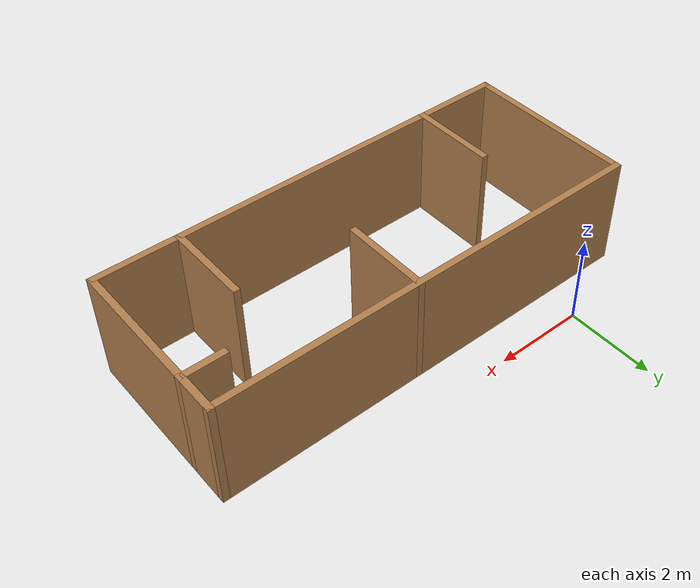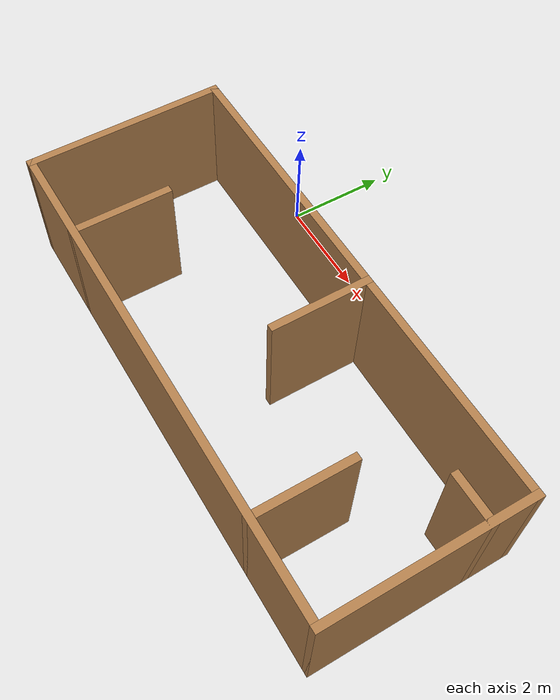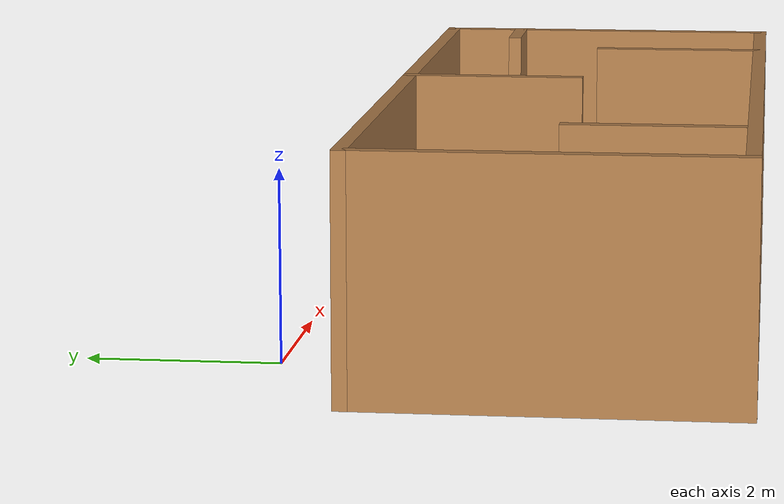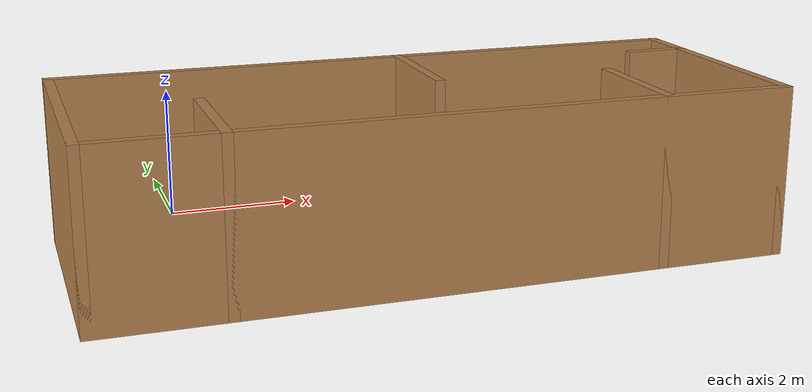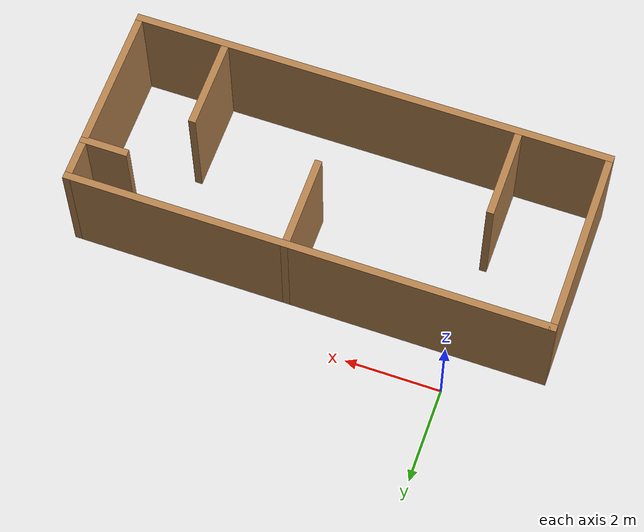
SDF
<?xml version='1.0'?>
<sdf version='1.6'>
  <model name='scene_1'>
    <pose frame=''>3.105 -2.805 0 0 -0 0</pose>
    <link name='Wall_0'>
      <collision name='Wall_0_Collision'>
        <geometry>
          <box>
            <size>4 0.15 2.5</size>
          </box>
        </geometry>
        <pose frame=''>0 0 1.25 0 -0 0</pose>
      </collision>
      <visual name='Wall_0_Visual'>
        <pose frame=''>0 0 1.25 0 -0 0</pose>
        <geometry>
          <box>
            <size>4 0.15 2.5</size>
          </box>
        </geometry>
        <material>
          <script>
            <uri>file://media/materials/scripts/gazebo.material</uri>
            <name>Gazebo/Wood</name>
          </script>
          <ambient>1 1 1 1</ambient>
        </material>
        <meta>
          <layer>0</layer>
        </meta>
      </visual>
      <pose frame=''>-4.925 0 0 0 -0 -1.5708</pose>
    </link>
    <link name='Wall_1'>
      <collision name='Wall_1_Collision'>
        <geometry>
          <box>
            <size>10 0.15 2.5</size>
          </box>
        </geometry>
        <pose frame=''>0 0 1.25 0 -0 0</pose>
      </collision>
      <visual name='Wall_1_Visual'>
        <pose frame=''>0 0 1.25 0 -0 0</pose>
        <geometry>
          <box>
            <size>10 0.15 2.5</size>
          </box>
        </geometry>
        <material>
          <script>
            <uri>file://media/materials/scripts/gazebo.material</uri>
            <name>Gazebo/Wood</name>
          </script>
          <ambient>1 1 1 1</ambient>
        </material>
        <meta>
          <layer>0</layer>
        </meta>
      </visual>
      <pose frame=''>0 -1.925 0 0 -0 0</pose>
    </link>
    <link name='Wall_2'>
      <collision name='Wall_2_Collision'>
        <geometry>
          <box>
            <size>4 0.15 2.5</size>
          </box>
        </geometry>
        <pose frame=''>0 0 1.25 0 -0 0</pose>
      </collision>
      <visual name='Wall_2_Visual'>
        <pose frame=''>0 0 1.25 0 -0 0</pose>
        <geometry>
          <box>
            <size>4 0.15 2.5</size>
          </box>
        </geometry>
        <material>
          <script>
            <uri>file://media/materials/scripts/gazebo.material</uri>
            <name>Gazebo/Wood</name>
          </script>
          <ambient>1 1 1 1</ambient>
        </material>
        <meta>
          <layer>0</layer>
        </meta>
      </visual>
      <pose frame=''>4.925 0 0 0 -0 1.5708</pose>
    </link>
    <link name='Wall_25'>
      <collision name='Wall_25_Collision'>
        <geometry>
          <box>
            <size>2 0.15 2.5</size>
          </box>
        </geometry>
        <pose frame=''>0 0 1.25 0 -0 0</pose>
      </collision>
      <visual name='Wall_25_Visual'>
        <pose frame=''>0 0 1.25 0 -0 0</pose>
        <geometry>
          <box>
            <size>2 0.15 2.5</size>
          </box>
        </geometry>
        <material>
          <script>
            <uri>file://media/materials/scripts/gazebo.material</uri>
            <name>Gazebo/Wood</name>
          </script>
          <ambient>1 1 1 1</ambient>
        </material>
        <meta>
          <layer>0</layer>
        </meta>
      </visual>
      <pose frame=''>0.425 1 0 0 -0 -1.5708</pose>
    </link>
    <link name='Wall_28'>
      <collision name='Wall_28_Collision'>
        <geometry>
          <box>
            <size>2 0.15 2.5</size>
          </box>
        </geometry>
        <pose frame=''>0 0 1.25 0 -0 0</pose>
      </collision>
      <visual name='Wall_28_Visual'>
        <pose frame=''>0 0 1.25 0 -0 0</pose>
        <geometry>
          <box>
            <size>2 0.15 2.5</size>
          </box>
        </geometry>
        <material>
          <script>
            <uri>file://media/materials/scripts/gazebo.material</uri>
            <name>Gazebo/Wood</name>
          </script>
          <ambient>1 1 1 1</ambient>
        </material>
        <meta>
          <layer>0</layer>
        </meta>
      </visual>
      <pose frame=''>-3.075 -1 0 0 -0 1.5708</pose>
    </link>
    <link name='Wall_3'>
      <collision name='Wall_3_Collision'>
        <geometry>
          <box>
            <size>10 0.15 2.5</size>
          </box>
        </geometry>
        <pose frame=''>0 0 1.25 0 -0 0</pose>
      </collision>
      <visual name='Wall_3_Visual'>
        <pose frame=''>0 0 1.25 0 -0 0</pose>
        <geometry>
          <box>
            <size>10 0.15 2.5</size>
          </box>
        </geometry>
        <material>
          <script>
            <uri>file://media/materials/scripts/gazebo.material</uri>
            <name>Gazebo/Wood</name>
          </script>
          <ambient>1 1 1 1</ambient>
        </material>
        <meta>
          <layer>0</layer>
        </meta>
      </visual>
      <pose frame=''>0 1.925 0 0 -0 3.14159</pose>
    </link>
    <link name='Wall_31'>
      <collision name='Wall_31_Collision'>
        <geometry>
          <box>
            <size>2 0.15 2.5</size>
          </box>
        </geometry>
        <pose frame=''>0 0 1.25 0 -0 0</pose>
      </collision>
      <visual name='Wall_31_Visual'>
        <pose frame=''>0 0 1.25 0 -0 0</pose>
        <geometry>
          <box>
            <size>2 0.15 2.5</size>
          </box>
        </geometry>
        <material>
          <script>
            <uri>file://media/materials/scripts/gazebo.material</uri>
            <name>Gazebo/Wood</name>
          </script>
          <ambient>1 1 1 1</ambient>
        </material>
        <meta>
          <layer>0</layer>
        </meta>
      </visual>
      <pose frame=''>3.075 -1 0 0 -0 1.5708</pose>
    </link>
    <link name='Wall_34'>
      <collision name='Wall_34_Collision'>
        <geometry>
          <box>
            <size>1 0.15 2.5</size>
          </box>
        </geometry>
        <pose frame=''>0 0 1.25 0 -0 0</pose>
      </collision>
      <visual name='Wall_34_Visual'>
        <pose frame=''>0 0 1.25 0 -0 0</pose>
        <geometry>
          <box>
            <size>1 0.15 2.5</size>
          </box>
        </geometry>
        <material>
          <script>
            <uri>file://media/materials/scripts/gazebo.material</uri>
            <name>Gazebo/Wood</name>
          </script>
          <ambient>1 1 1 1</ambient>
        </material>
        <meta>
          <layer>0</layer>
        </meta>
      </visual>
      <pose frame=''>4.5 1.075 0 0 -0 3.14159</pose>
    </link>
    <static>1</static>
  </model>
</sdf>
